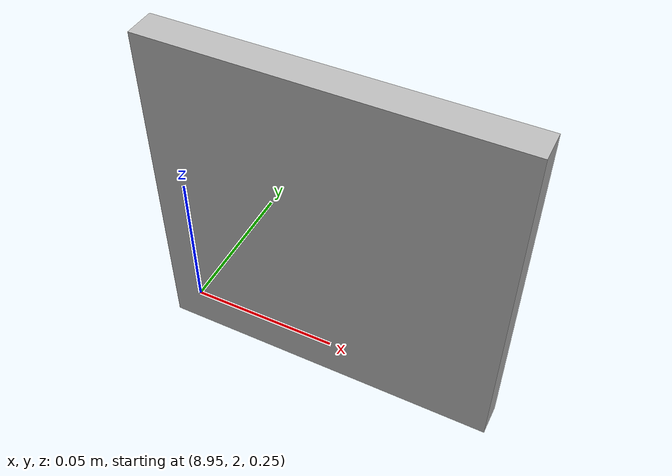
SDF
<?xml version='1.0'?>
<sdf version='1.6'>
  <model name='Apriltag36_11_00002'>
    <link name='main'>
    <pose frame=''>9 2 0.3 1.570796327 0 0</pose>
      <visual name='main_Visual'>
        <geometry>
          <box>
          <size>0.1125 0.1125 0.01</size>
          </box>
        </geometry>
           <material>
          <script>
            <uri>model://Apriltag36_11_00002/materials/scripts</uri>
            <uri>model://Apriltag36_11_00002/materials/textures</uri>
            <name>Apriltag36_11_00002</name>
          </script>
        </material>
      </visual>
     </link>
    <static>1</static>
  </model>
</sdf>
